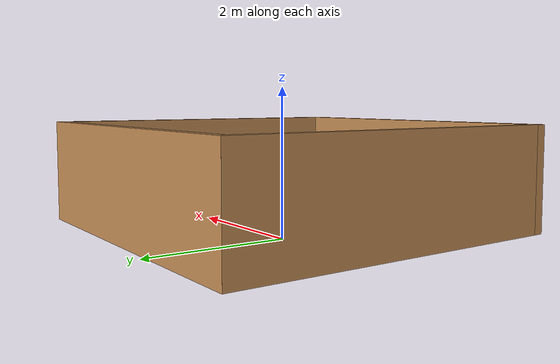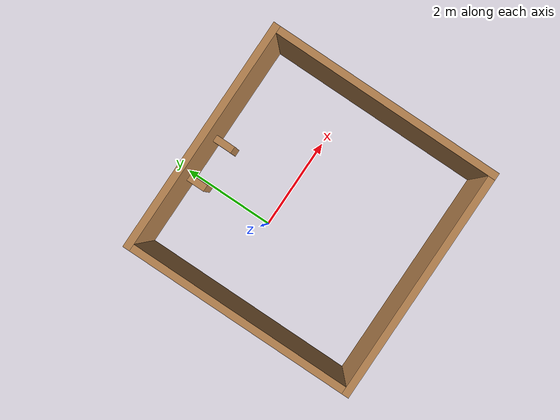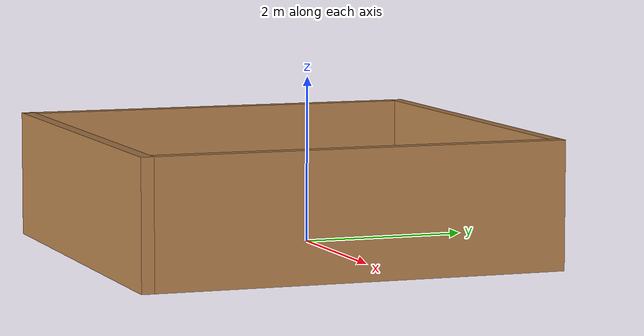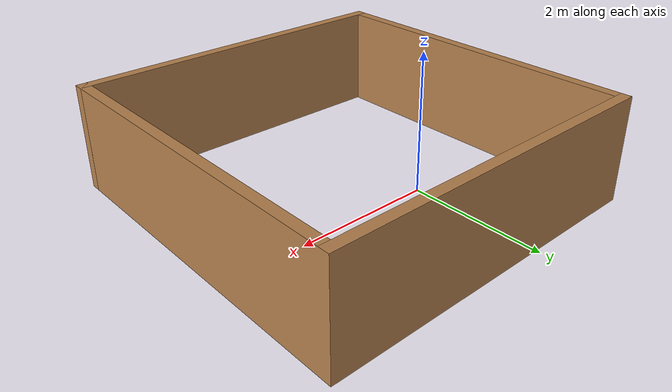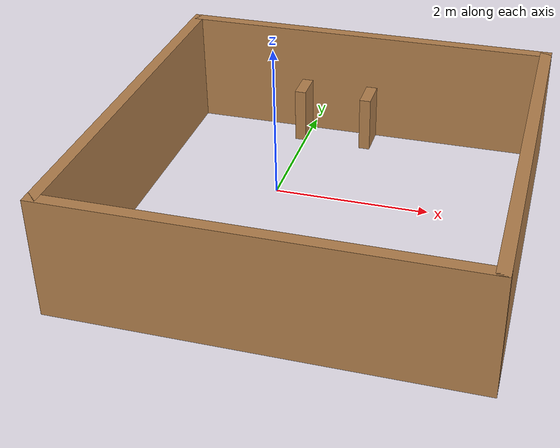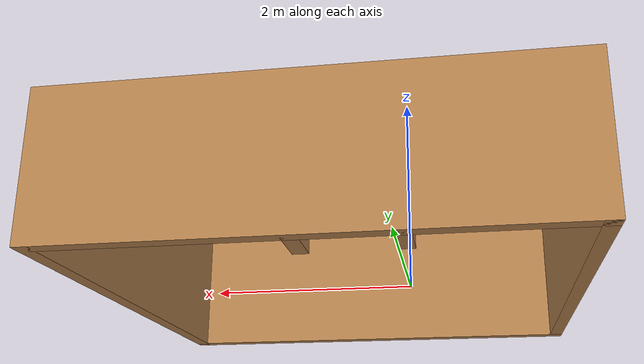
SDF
<?xml version='1.0'?>
<sdf version='1.6'>
  <model name='square'>
    <pose frame=''>0.738 -0.5805 0 0 -0 0</pose>
    <link name='Wall_0'>
      <collision name='Wall_0_Collision'>
        <geometry>
          <box>
            <size>5 0.15 1.5</size>
          </box>
        </geometry>
        <pose frame=''>0 0 0.75 0 -0 0</pose>
      </collision>
      <visual name='Wall_0_Visual'>
        <pose frame=''>0 0 0.75 0 -0 0</pose>
        <geometry>
          <box>
            <size>5 0.15 1.5</size>
          </box>
        </geometry>
        <material>
          <script>
            <uri>file://media/materials/scripts/gazebo.material</uri>
            <name>Gazebo/Wood</name>
          </script>
          <ambient>1 1 1 1</ambient>
        </material>
        <meta>
          <layer>0</layer>
        </meta>
      </visual>
      <pose frame=''>-0 2.4365 0 0 -0 0</pose>
    </link>
    <link name='Wall_1'>
      <collision name='Wall_1_Collision'>
        <geometry>
          <box>
            <size>5.02278 0.15 1.5</size>
          </box>
        </geometry>
        <pose frame=''>0 0 0.75 0 -0 0</pose>
      </collision>
      <visual name='Wall_1_Visual'>
        <pose frame=''>0 0 0.75 0 -0 0</pose>
        <geometry>
          <box>
            <size>5.02278 0.15 1.5</size>
          </box>
        </geometry>
        <material>
          <script>
            <uri>file://media/materials/scripts/gazebo.material</uri>
            <name>Gazebo/Wood</name>
          </script>
          <ambient>1 1 1 1</ambient>
        </material>
        <meta>
          <layer>0</layer>
        </meta>
      </visual>
      <pose frame=''>2.425 0 0 0 -0 -1.5708</pose>
    </link>
    <link name='Wall_2'>
      <collision name='Wall_2_Collision'>
        <geometry>
          <box>
            <size>5 0.15 1.5</size>
          </box>
        </geometry>
        <pose frame=''>0 0 0.75 0 -0 0</pose>
      </collision>
      <visual name='Wall_2_Visual'>
        <pose frame=''>0 0 0.75 0 -0 0</pose>
        <geometry>
          <box>
            <size>5 0.15 1.5</size>
          </box>
        </geometry>
        <material>
          <script>
            <uri>file://media/materials/scripts/gazebo.material</uri>
            <name>Gazebo/Wood</name>
          </script>
          <ambient>1 1 1 1</ambient>
        </material>
        <meta>
          <layer>0</layer>
        </meta>
      </visual>
      <pose frame=''>-0 -2.4365 0 0 -0 3.14159</pose>
    </link>
    <link name='Wall_3'>
      <collision name='Wall_3_Collision'>
        <geometry>
          <box>
            <size>5.02278 0.15 1.5</size>
          </box>
        </geometry>
        <pose frame=''>0 0 0.75 0 -0 0</pose>
      </collision>
      <visual name='Wall_3_Visual'>
        <pose frame=''>0 0 0.75 0 -0 0</pose>
        <geometry>
          <box>
            <size>5.02278 0.15 1.5</size>
          </box>
        </geometry>
        <material>
          <script>
            <uri>file://media/materials/scripts/gazebo.material</uri>
            <name>Gazebo/Wood</name>
          </script>
          <ambient>1 1 1 1</ambient>
        </material>
        <meta>
          <layer>0</layer>
        </meta>
      </visual>
      <pose frame=''>-2.425 0 0 0 -0 1.5708</pose>
    </link>
    <link name='Wall_5'>
      <collision name='Wall_5_Collision'>
        <geometry>
          <box>
            <size>0.5 0.15 0.75</size>
          </box>
        </geometry>
        <pose frame=''>0 0 0.375 0 -0 0</pose>
      </collision>
      <visual name='Wall_5_Visual'>
        <pose frame=''>0 0 0.375 0 -0 0</pose>
        <geometry>
          <box>
            <size>0.5 0.15 0.75</size>
          </box>
        </geometry>
        <material>
          <script>
            <uri>file://media/materials/scripts/gazebo.material</uri>
            <name>Gazebo/Wood</name>
          </script>
          <ambient>1 1 1 1</ambient>
        </material>
        <meta>
          <layer>0</layer>
        </meta>
      </visual>
      <pose frame=''>-0.806 2.2155 0 0 -0 -1.5708</pose>
    </link>
    <link name='Wall_7'>
      <collision name='Wall_7_Collision'>
        <geometry>
          <box>
            <size>0.5 0.15 0.75</size>
          </box>
        </geometry>
        <pose frame=''>0 0 0.375 0 -0 0</pose>
      </collision>
      <visual name='Wall_7_Visual'>
        <pose frame=''>0 0 0.375 0 -0 0</pose>
        <geometry>
          <box>
            <size>0.5 0.15 0.75</size>
          </box>
        </geometry>
        <material>
          <script>
            <uri>file://media/materials/scripts/gazebo.material</uri>
            <name>Gazebo/Wood</name>
          </script>
          <ambient>1 1 1 1</ambient>
        </material>
        <meta>
          <layer>0</layer>
        </meta>
      </visual>
      <pose frame=''>0.119 2.1915 0 0 -0 -1.5708</pose>
    </link>
    <static>1</static>
  </model>
</sdf>
